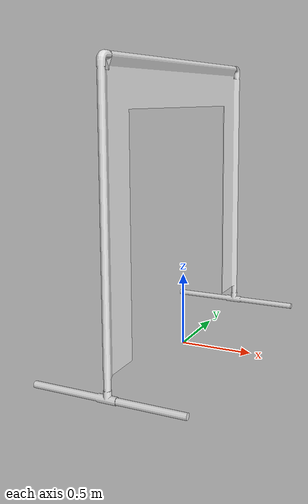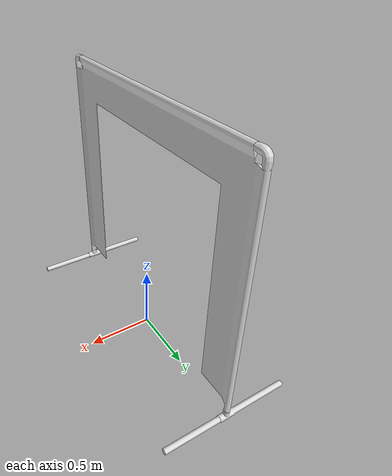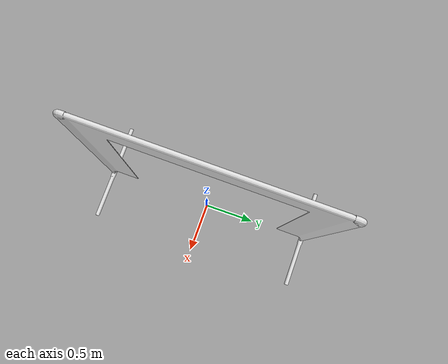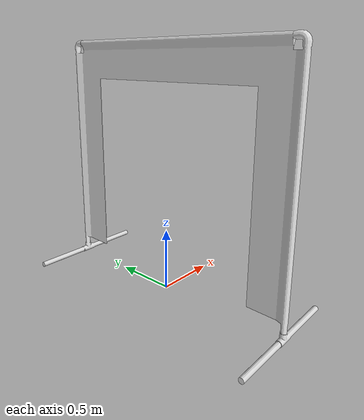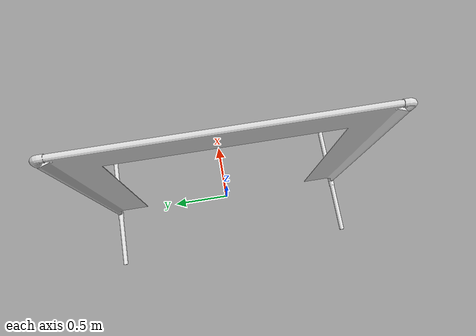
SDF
<?xml version="1.0" encoding="utf-8"?>
<sdf version='1.7'>

  <model name='Target'>
    <link name='target'>

      <inertial>
        <pose>0 -0 0.2 0 -0 0</pose>
        <mass>565.15</mass>
        <inertia>
          <ixx>187.92</ixx>
          <ixy>1.3632e-14</ixy>
          <ixz>1.5708e-13</ixz>
          <iyy>546.66</iyy>
          <iyz>-1.4528e-14</iyz>
          <izz>373.81</izz>
        </inertia>
      </inertial>

      <collision name='Target_collision'>
        <pose>0 0 0 0 -0 0</pose>
        <geometry>
          <mesh>
            <scale>1 1 1</scale>
            <uri>model://Target/meshes/target.STL</uri>
          </mesh>
        </geometry>
      </collision>

      <visual name='Target_visual'>
        <pose>0 0 0 0 -0 0</pose>
        <geometry>
          <mesh>
            <scale>1 1 1</scale>
            <uri>model://Target/meshes/Target.dae</uri>
          </mesh>
        </geometry>
      </visual>
    </link>
  </model>

</sdf>
